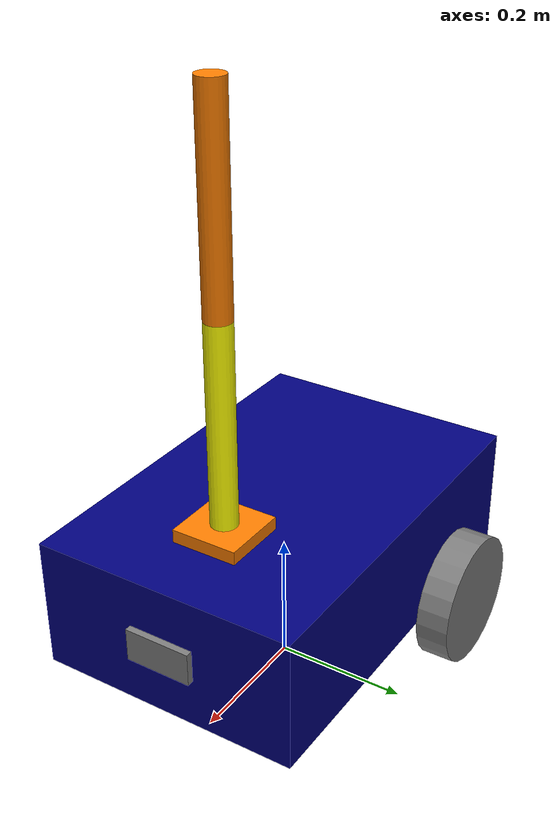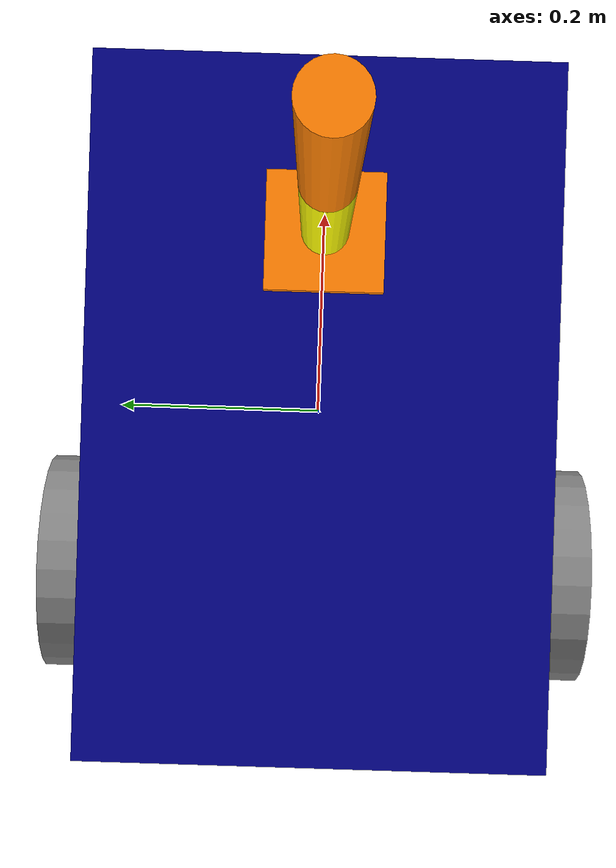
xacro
<?xml version="1.0"?>
<robot name="my_robot" xmlns:xacro="http://www.ros.org/wiki/xacro">

    <!-- 1. PROPERTIES & MATERIALS Imports the shared configuration file containing dimensions, colors, and math macros. -->
    <xacro:include filename="common_properties.xacro"/>

    <!-- 2. CORE ROBOT STRUCTURE Imports the basic URDF links, shapes, and joints making up the physical robot body. -->
    <xacro:include filename="mobile_base.xacro"/>

    <!-- 3. SIMULATOR PLUGINS & PHYSICS Imports the Gazebo-specific controllers, friction tunings, and sensor bridges. -->
    <xacro:include filename="mobile_base_gazebo.xacro"/>

    <xacro:include filename="arm.xacro"/>
    <xacro:include filename="arm_gazebo.xacro"/>
    <!-- 4. Include camera link-->
    <xacro:include filename="camera.xacro"/>

    <joint name="mobile_base_arm_joint" type="fixed">
        <parent link="base_link"/>
        <child link="arm_base_link"/>
        <origin xyz="${base_length/4.0} 0 ${base_height}" rpy="0 0 0"/>
    </joint>

</robot>

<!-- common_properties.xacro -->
<robot xmlns:xacro="http://www.ros.org/wiki/xacro">

    <material name="blue">
        <color rgba="0 0 0.5 1" />
    </material>

    <material name="green">
        <color rgba="0 0.5 0 1" />
    </material>

    <material name="grey">
        <color rgba="0.5 0.5 0.5 1" />
    </material>

    <material name="orange">
        <color rgba="1 0.5 0.0 1" />
    </material>

    <material name="red">
        <color rgba="1 0 0 1" />
    </material>

    <material name="yellow">
        <color rgba="1 1 0 1" />
    </material>

    <xacro:macro name="box_inertia" params="m x y z o_xyz o_rpy">
        <inertial>
            <mass value="${m}"/>
            <origin xyz="${o_xyz}" rpy="${o_rpy}" />
            <inertia ixx="${(m/12) * (y*y + z*z)}" ixy="0" ixz="0"
                     iyy="${(m/12) * (x*x + z*z)}" iyz="0"
                     izz="${(m/12) * (y*y + x*x)}" />
        </inertial>
    </xacro:macro>

    <xacro:macro name="cylinder_inertia" params="h m r o_xyz o_rpy">
        <inertial>
            <mass value="${m}"/>
            <origin xyz="${o_xyz}" rpy="${o_rpy}" />
            <inertia ixx="${(m/12) * (3*r*r + h*h)}" ixy="0" ixz="0"
                     iyy="${(m/12) * (3*r*r + h*h)}" iyz="0"
                     izz="${m*r*r/2}" />
        </inertial>
    </xacro:macro>

    <xacro:macro name="cylinder_inertia_end" params="h m o_xyz o_rpy">
        <inertial>
            <mass value="${m}"/>
            <origin xyz="${o_xyz}" rpy="${o_rpy}" />
            <inertia ixx="${m*h*h/3}" ixy="0" ixz="0"
                     iyy="0" iyz="0"
                     izz="${m*h*h/3}" />
        </inertial>
    </xacro:macro>

    <xacro:macro name="sphere_inertia" params="m r o_xyz o_rpy">
        <inertial>
            <mass value="${m}"/>
            <origin xyz="${o_xyz}" rpy="${o_rpy}" />
            <inertia ixx="${2*m*r*r/5}" ixy="0" ixz="0"
                     iyy="${2*m*r*r/5}" iyz="0"
                     izz="${2*m*r*r/5}"/>
        </inertial>
    </xacro:macro>
</robot>

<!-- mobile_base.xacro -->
<robot xmlns:xacro="http://www.ros.org/wiki/xacro">

    <!-- 1. ROBOT DIMENSIONS AND PARAMETERS
      Defines physical sizes, radii, and widths as reusable variables. -->
    <xacro:property name="base_length" value="0.6"/>
    <xacro:property name="base_width" value="0.4" />
    <xacro:property name="base_height" value="0.2" />
    <xacro:property name="wheel_radius" value="0.1" />
    <xacro:property name="wheel_length" value="0.05" />

    <!-- 2. GROUND REFERENCE LINK
      An empty, weightless link sitting directly on the floor for navigation tracking. -->
    <link name="base_footprint_link"/>

    <!-- 3. MAIN ROBOT CHASSIS BODY
      Defines the physical box body, its material color, collisions, and mass weight. -->
    <link name="base_link">
        <visual>
            <geometry>
                <box size="${base_length} ${base_width} ${base_height}" />
            </geometry>
            <origin xyz="0 0 ${wheel_radius}" rpy="0 0 0" />

            <material name="blue" />
        </visual>

        <collision>
            <geometry>
                <box size="${base_length} ${base_width} ${base_height}" />
            </geometry>
            <origin xyz="0 0 ${wheel_radius}" rpy="0 0 0" />
        </collision>

        <xacro:box_inertia m="5.0" x="${base_length}" y="${base_width}" z="${base_height}"
                           o_xyz="0 0 ${wheel_radius}" o_rpy="0 0 0"/>

    </link>

    <!-- 4. REUSABLE WHEEL CREATOR TEMPLATE
      A macro that automatically builds uniform wheel cylinders with spherical collision envelopes. -->
    <xacro:macro name="wheel_link" params="prefix">
        <link name="${prefix}_wheel_link">
            <visual>
                <geometry>
                    <cylinder radius="${wheel_radius}" length="${wheel_length}" />
                </geometry>
                <origin xyz="0 0 0" rpy="${pi / 2.0} 0 0" />

                <material name="grey" />
            </visual>

            <collision>
                <geometry>
                    <sphere radius="${wheel_radius}"/>
                </geometry>
                <origin xyz="0 0 0" rpy="0 0 0"/>
            </collision>

            <xacro:cylinder_inertia m="1.0" h="${wheel_length}" r="${wheel_radius}"
                                o_xyz="0 0 0" o_rpy="${pi / 2.0} 0 0"/>

        </link>
    </xacro:macro>

    <!-- 5. INSTANTIATE WHEELS
      Uses the macro block above to generate distinct left and right wheel segments. -->
    <xacro:wheel_link prefix="right"/>
    <xacro:wheel_link prefix="left"/>

    <!-- 6. CASTER WHEEL PHYSICAL MESH
      Defines a spherical front support wheel to balance out the chassis frame. -->
    <link name="caster_wheel_link">
        <visual>
            <geometry>
                <sphere radius="${wheel_radius / 2.0}"/>
            </geometry>
            <origin xyz="0 0 0" rpy="0 0 0"/>

            <material name="grey"/>
        </visual>

        <collision>
            <geometry>
                <sphere radius="${wheel_radius / 2.0}"/>
            </geometry>
            <origin xyz="0 0 0" rpy="0 0 0"/>
        </collision>

        <xacro:sphere_inertia m="0.5" r="${wheel_radius / 2.0}"
                                o_xyz="0 0 0" o_rpy="${pi / 2.0} 0 0"/>
    </link>

    <!-- 7. ACTUATED DRIVE WHEEL JOINTS
      Connects the drive wheels to the chassis with a rotating axis running sideways (Y-axis). -->
    <joint name="base_right_wheel_joint" type="continuous">
        <parent link="base_link"/>
        <child link="right_wheel_link"/>
        <origin xyz="${- base_length / 4.0} ${- base_width / 2.0 - wheel_length / 2.0} 0" rpy="0 0 0"/>
        <axis xyz="0 1 0"/>
    </joint>

    <joint name="base_left_wheel_joint" type="continuous">
        <parent link="base_link"/>
        <child link="left_wheel_link"/>
        <origin xyz="${- base_length / 4.0} ${base_width / 2.0 + wheel_length / 2.0} 0" rpy="0 0 0"/>
        <axis xyz="0 1 0"/>
    </joint>

    <!-- 8. BALANCING FRONT SUPPORT JOINT
      Connects the caster rigidly (fixed) to the front chassis to eliminate bouncy simulation artifacts. -->
    <joint name="base_caster_wheel_joint" type="fixed">
        <parent link="base_link"/>
        <child link="caster_wheel_link"/>
        <origin xyz="${base_length / 4.0} 0 ${- wheel_radius / 2.0}" rpy="0 0 0"/>
    </joint>

    <!-- 9. CHASSIS ATTACHMENT JOINT
      Locks the main chassis assembly vertically onto your baseline footprint framework. -->
    <joint name="base_footprint_joint" type="fixed">
        <parent link="base_footprint_link"/>
        <child link="base_link"/>
        <origin xyz="0 0 ${wheel_radius}" rpy="0 0 0"/>
    </joint>

</robot>

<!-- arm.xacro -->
<robot xmlns:xacro="http://www.ros.org/wiki/xacro">

    <xacro:property name="arm_base_length" value="0.1"/>
    <xacro:property name="arm_base_width" value="0.1"/>
    <xacro:property name="arm_base_height" value="0.02"/>

    <xacro:property name="forearm_radius" value="0.02"/>
    <xacro:property name="forearm_length" value="0.3"/>

    <xacro:property name="hand_radius" value="0.02"/>
    <xacro:property name="hand_length" value="0.3"/>

    <xacro:property name="forearm_friction" value="0.3"/>
    <xacro:property name="forearm_damping" value="0.3"/>

    <xacro:property name="hand_friction" value="0.3"/>
    <xacro:property name="hand_damping" value="0.3"/>

    <xacro:property name="arm_base_mass" value="5"/>
    <xacro:property name="forearm_mass" value="0.3"/>
    <xacro:property name="hand_mass" value="0.3"/>

    <link name="arm_base_link">
        <visual>
            <geometry>
                <box size="${arm_base_length} ${arm_base_width} ${arm_base_height}" />
            </geometry>

            <origin xyz="0 0 ${arm_base_height / 2.0}" rpy="0 0 0"/>

            <material name="orange"/>
        </visual>

        <collision>
            <geometry>
                <box size="${arm_base_length} ${arm_base_width} ${arm_base_height}" />
            </geometry>

            <origin xyz="0 0 ${arm_base_height / 2.0}" rpy="0 0 0"/>
        </collision>

        <xacro:box_inertia m="${arm_base_mass}" x="${arm_base_length}" y="${arm_base_width}" z="${arm_base_height}"
                           o_xyz="0 0 ${arm_base_height / 2.0}" o_rpy="0 0 0"/>
    </link>

    <link name="forearm_link">
        <visual>
            <geometry>
                <cylinder radius="${forearm_radius}" length="${forearm_length}"/>
            </geometry>

            <origin xyz="0 0 ${forearm_length / 2.0}" rpy="0 0 0" />

            <material name="yellow"/>
        </visual>

        <collision>
            <geometry>
                <cylinder radius="${forearm_radius}" length="${forearm_length}"/>
            </geometry>

            <origin xyz="0 0 ${forearm_length / 2.0}" rpy="0 0 0" />
        </collision>

        <xacro:cylinder_inertia m="${forearm_mass}" h="${forearm_length}" r="${forearm_radius}"
                                o_xyz="0 0 ${forearm_length / 2.0}" o_rpy="0 0 0"/>
    </link>

    <link name="hand_link">
        <visual>
            <geometry>
                <cylinder radius="${hand_radius}" length="${hand_length}"/>
            </geometry>

            <origin xyz="0 0 ${hand_length/2.0}" rpy="0 0 0" />

            <material name="orange"/>
        </visual>

        <collision>
            <geometry>
                <cylinder radius="${hand_radius}" length="${hand_length}"/>
            </geometry>

            <origin xyz="0 0 ${hand_length/2.0}" rpy="0 0 0" />
        </collision>

        <xacro:cylinder_inertia m="${hand_mass}" h="${hand_length}" r="${hand_radius}"
                                o_xyz="0 0 ${hand_length/2.0}" o_rpy="0 0 0"/>
    </link>

    <joint name="base_arm_forearm_joint" type="revolute">
        <parent link="arm_base_link"/>
        <child link="forearm_link"/>
        <origin xyz="0 0 ${arm_base_height}" rpy="0 0 0"/>
        <axis xyz="0 1 0"/>
        <limit upper="${pi/2.0}" lower="0" effort="100" velocity="100"/>
        <dynamics friction="${forearm_friction}" damping="${forearm_damping}" />
    </joint>

    <joint name="forearm_hand_joint" type="revolute">
        <parent link="forearm_link"/>
        <child link="hand_link"/>
        <origin xyz="0 0 ${forearm_length}" rpy="0 0 0"/>
        <axis xyz="0 1 0"/>
        <limit upper="${pi/2.0}" lower="0" effort="100" velocity="100"/>
        <dynamics friction="${hand_friction}" damping="${hand_damping}" />
    </joint>

</robot>

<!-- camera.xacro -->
<robot xmlns:xacro="http://www.ros.org/wiki/xacro">

    <xacro:property name="camera_length" value="0.01"/>
    <xacro:property name="camera_width" value="0.1"/>
    <xacro:property name="camera_height" value="0.05"/>

    <link name="camera_link">
        <visual>
            <geometry>
                <box size="${camera_length} ${camera_width} ${camera_height}" />
            </geometry>
            <material name="grey" />
        </visual>

        <collision>
            <geometry>
                <box size="${camera_length} ${camera_width} ${camera_height}" />
            </geometry>
        </collision>

        <xacro:box_inertia m="0.1" x="${camera_length}" y="${camera_width}" z="${camera_height}"
                           o_xyz="0 0 0" o_rpy="0 0 0"/>
    </link>

    <joint name="base_camera_joint" type="fixed">
        <parent link="base_link"/>
        <child link="camera_link"/>
        <origin xyz="${(base_length + camera_length)/2.0} 0 ${base_height/2.0}" rpy="0 0 0"/>
    </joint>

    <link name="camera_link_optical"/>

    <joint name="camera_optical_joint" type="fixed">
        <origin xyz="0 0 0" rpy="${-pi/2} 0 ${-pi/2}"/>
        <parent link="camera_link"/>
        <child link="camera_link_optical"/>
    </joint>

    <gazebo reference="camera_link">
        <sensor name="camera" type="camera">
            <camera>
                <horizontal_fov>1.3962634</horizontal_fov>
                <image>
                    <width>640</width>
                    <height>480</height>
                    <format>R8G8B8</format>
                </image>
                <clip>
                    <near>0.1</near>
                    <far>15</far>
                </clip>
                <noise>
                    <type>gaussian</type>
                    <mean>0.0</mean>
                    <stddev>0.007</stddev>
                </noise>
                <optical_frame_id>camera_link_optical</optical_frame_id>
                <camera_info_topic>camera/camera_info</camera_info_topic>
            </camera>
            <always_on>1</always_on>
            <update_rate>20</update_rate>
            <visualize>true</visualize>
            <topic>camera/image_raw</topic>
        </sensor>
    </gazebo>

</robot>
